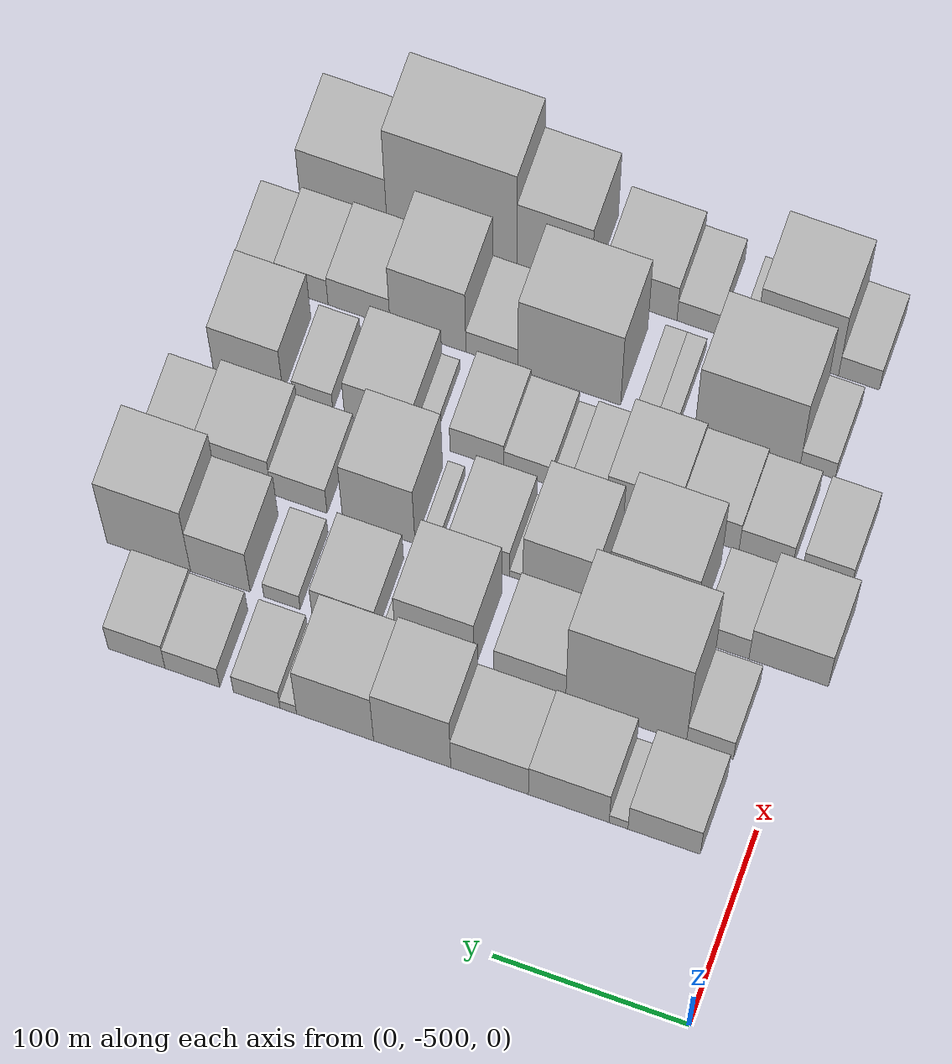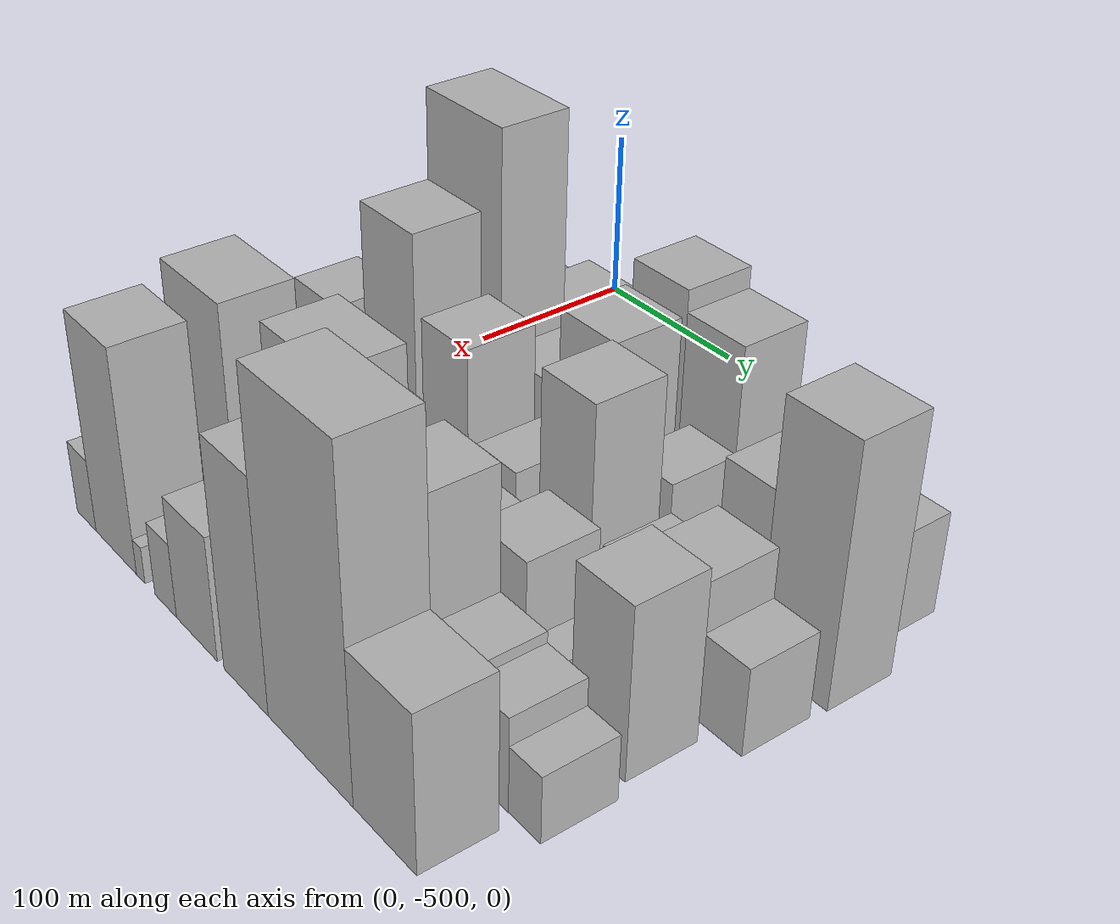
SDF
<sdf version="1.6">
 <world name="default">
  <model name="building_10">
   <static>1</static>
   <pose>100.0000 -459.2454 0 0.000000 0.000000 0.000000</pose>
   <link name="link">
    <pose>0 0 31.50 0 0 0</pose>
    <collision name="collision"><geometry><box><size>40.0000 36.8811 63.0000</size></box></geometry></collision>
    <visual name="visual">
     <cast_shadows>0</cast_shadows>
     <geometry><box><size>40.0000 36.8811 63.0000</size></box></geometry>
     <material>
      <script>
       <uri>model://HANNAS_wall/materials/scripts</uri>
       <uri>model://HANNAS_wall/materials/textures</uri>
       <name>vrc/HANNAS_wall</name>
      </script>
     </material>
    </visual>
   </link>
  </model>
  <model name="building_11">
   <static>1</static>
   <pose>100.0000 -436.0105 0 0.000000 0.000000 0.000000</pose>
   <link name="link">
    <pose>0 0 10.50 0 0 0</pose>
    <collision name="collision"><geometry><box><size>40.0000 9.5886 21.0000</size></box></geometry></collision>
    <visual name="visual">
     <cast_shadows>0</cast_shadows>
     <geometry><box><size>40.0000 9.5886 21.0000</size></box></geometry>
     <material>
      <script>
       <uri>model://HANNAS_wall/materials/scripts</uri>
       <uri>model://HANNAS_wall/materials/textures</uri>
       <name>vrc/HANNAS_wall</name>
      </script>
     </material>
    </visual>
   </link>
  </model>
  <model name="building_12">
   <static>1</static>
   <pose>100.0000 -410.6025 0 0.000000 0.000000 0.000000</pose>
   <link name="link">
    <pose>0 0 37.50 0 0 0</pose>
    <collision name="collision"><geometry><box><size>40.0000 41.2275 75.0000</size></box></geometry></collision>
    <visual name="visual">
     <cast_shadows>0</cast_shadows>
     <geometry><box><size>40.0000 41.2275 75.0000</size></box></geometry>
     <material>
      <script>
       <uri>model://HANNAS_wall/materials/scripts</uri>
       <uri>model://HANNAS_wall/materials/textures</uri>
       <name>vrc/HANNAS_wall</name>
      </script>
     </material>
    </visual>
   </link>
  </model>
  <model name="building_13">
   <static>1</static>
   <pose>100.0000 -370.1580 0 0.000000 0.000000 0.000000</pose>
   <link name="link">
    <pose>0 0 36.00 0 0 0</pose>
    <collision name="collision"><geometry><box><size>40.0000 39.6615 72.0000</size></box></geometry></collision>
    <visual name="visual">
     <cast_shadows>0</cast_shadows>
     <geometry><box><size>40.0000 39.6615 72.0000</size></box></geometry>
     <material>
      <script>
       <uri>model://HANNAS_wall/materials/scripts</uri>
       <uri>model://HANNAS_wall/materials/textures</uri>
       <name>vrc/HANNAS_wall</name>
      </script>
     </material>
    </visual>
   </link>
  </model>
  <model name="building_14">
   <static>1</static>
   <pose>100.0000 -330.5954 0 0.000000 0.000000 0.000000</pose>
   <link name="link">
    <pose>0 0 61.50 0 0 0</pose>
    <collision name="collision"><geometry><box><size>40.0000 39.4638 123.0000</size></box></geometry></collision>
    <visual name="visual">
     <cast_shadows>0</cast_shadows>
     <geometry><box><size>40.0000 39.4638 123.0000</size></box></geometry>
     <material>
      <script>
       <uri>model://HANNAS_wall/materials/scripts</uri>
       <uri>model://HANNAS_wall/materials/textures</uri>
       <name>vrc/HANNAS_wall</name>
      </script>
     </material>
    </visual>
   </link>
  </model>
  <model name="building_15">
   <static>1</static>
   <pose>100.0000 -291.1139 0 0.000000 0.000000 0.000000</pose>
   <link name="link">
    <pose>0 0 55.50 0 0 0</pose>
    <collision name="collision"><geometry><box><size>40.0000 39.4993 111.0000</size></box></geometry></collision>
    <visual name="visual">
     <cast_shadows>0</cast_shadows>
     <geometry><box><size>40.0000 39.4993 111.0000</size></box></geometry>
     <material>
      <script>
       <uri>model://HANNAS_wall/materials/scripts</uri>
       <uri>model://HANNAS_wall/materials/textures</uri>
       <name>vrc/HANNAS_wall</name>
      </script>
     </material>
    </visual>
   </link>
  </model>
  <model name="building_16">
   <static>1</static>
   <pose>100.0000 -267.1278 0 0.000000 0.000000 0.000000</pose>
   <link name="link">
    <pose>0 0 10.50 0 0 0</pose>
    <collision name="collision"><geometry><box><size>40.0000 8.4728 21.0000</size></box></geometry></collision>
    <visual name="visual">
     <cast_shadows>0</cast_shadows>
     <geometry><box><size>40.0000 8.4728 21.0000</size></box></geometry>
     <material>
      <script>
       <uri>model://HANNAS_wall/materials/scripts</uri>
       <uri>model://HANNAS_wall/materials/textures</uri>
       <name>vrc/HANNAS_wall</name>
      </script>
     </material>
    </visual>
   </link>
  </model>
  <model name="building_17">
   <static>1</static>
   <pose>100.0000 -250.9121 0 0.000000 0.000000 0.000000</pose>
   <link name="link">
    <pose>0 0 21.00 0 0 0</pose>
    <collision name="collision"><geometry><box><size>40.0000 23.9586 42.0000</size></box></geometry></collision>
    <visual name="visual">
     <cast_shadows>0</cast_shadows>
     <geometry><box><size>40.0000 23.9586 42.0000</size></box></geometry>
     <material>
      <script>
       <uri>model://HANNAS_wall/materials/scripts</uri>
       <uri>model://HANNAS_wall/materials/textures</uri>
       <name>vrc/HANNAS_wall</name>
      </script>
     </material>
    </visual>
   </link>
  </model>
  <model name="building_18">
   <static>1</static>
   <pose>100.0000 -217.8947 0 0.000000 0.000000 0.000000</pose>
   <link name="link">
    <pose>0 0 24.00 0 0 0</pose>
    <collision name="collision"><geometry><box><size>40.0000 28.0762 48.0000</size></box></geometry></collision>
    <visual name="visual">
     <cast_shadows>0</cast_shadows>
     <geometry><box><size>40.0000 28.0762 48.0000</size></box></geometry>
     <material>
      <script>
       <uri>model://HANNAS_wall/materials/scripts</uri>
       <uri>model://HANNAS_wall/materials/textures</uri>
       <name>vrc/HANNAS_wall</name>
      </script>
     </material>
    </visual>
   </link>
  </model>
  <model name="building_19">
   <static>1</static>
   <pose>100.0000 -189.2541 0 0.000000 0.000000 0.000000</pose>
   <link name="link">
    <pose>0 0 28.50 0 0 0</pose>
    <collision name="collision"><geometry><box><size>40.0000 29.2049 57.0000</size></box></geometry></collision>
    <visual name="visual">
     <cast_shadows>0</cast_shadows>
     <geometry><box><size>40.0000 29.2049 57.0000</size></box></geometry>
     <material>
      <script>
       <uri>model://HANNAS_wall/materials/scripts</uri>
       <uri>model://HANNAS_wall/materials/textures</uri>
       <name>vrc/HANNAS_wall</name>
      </script>
     </material>
    </visual>
   </link>
  </model>
  <model name="building_56">
   <static>1</static>
   <pose>149.0000 -465.5635 0 0.000000 0.000000 0.000000</pose>
   <link name="link">
    <pose>0 0 22.50 0 0 0</pose>
    <collision name="collision"><geometry><box><size>40.0000 23.9850 45.0000</size></box></geometry></collision>
    <visual name="visual">
     <cast_shadows>0</cast_shadows>
     <geometry><box><size>40.0000 23.9850 45.0000</size></box></geometry>
     <material>
      <script>
       <uri>model://HANNAS_wall/materials/scripts</uri>
       <uri>model://HANNAS_wall/materials/textures</uri>
       <name>vrc/HANNAS_wall</name>
      </script>
     </material>
    </visual>
   </link>
  </model>
  <model name="building_57">
   <static>1</static>
   <pose>149.0000 -422.7163 0 0.000000 0.000000 0.000000</pose>
   <link name="link">
    <pose>0 0 94.50 0 0 0</pose>
    <collision name="collision"><geometry><box><size>40.0000 61.7095 189.0000</size></box></geometry></collision>
    <visual name="visual">
     <cast_shadows>0</cast_shadows>
     <geometry><box><size>40.0000 61.7095 189.0000</size></box></geometry>
     <material>
      <script>
       <uri>model://HANNAS_wall/materials/scripts</uri>
       <uri>model://HANNAS_wall/materials/textures</uri>
       <name>vrc/HANNAS_wall</name>
      </script>
     </material>
    </visual>
   </link>
  </model>
  <model name="building_58">
   <static>1</static>
   <pose>149.0000 -373.5208 0 0.000000 0.000000 0.000000</pose>
   <link name="link">
    <pose>0 0 34.50 0 0 0</pose>
    <collision name="collision"><geometry><box><size>40.0000 36.6815 69.0000</size></box></geometry></collision>
    <visual name="visual">
     <cast_shadows>0</cast_shadows>
     <geometry><box><size>40.0000 36.6815 69.0000</size></box></geometry>
     <material>
      <script>
       <uri>model://HANNAS_wall/materials/scripts</uri>
       <uri>model://HANNAS_wall/materials/textures</uri>
       <name>vrc/HANNAS_wall</name>
      </script>
     </material>
    </visual>
   </link>
  </model>
  <model name="building_59">
   <static>1</static>
   <pose>149.0000 -325.0015 0 0.000000 0.000000 0.000000</pose>
   <link name="link">
    <pose>0 0 57.00 0 0 0</pose>
    <collision name="collision"><geometry><box><size>40.0000 40.3569 114.0000</size></box></geometry></collision>
    <visual name="visual">
     <cast_shadows>0</cast_shadows>
     <geometry><box><size>40.0000 40.3569 114.0000</size></box></geometry>
     <material>
      <script>
       <uri>model://HANNAS_wall/materials/scripts</uri>
       <uri>model://HANNAS_wall/materials/textures</uri>
       <name>vrc/HANNAS_wall</name>
      </script>
     </material>
    </visual>
   </link>
  </model>
  <model name="building_60">
   <static>1</static>
   <pose>149.0000 -301.2063 0 0.000000 0.000000 0.000000</pose>
   <link name="link">
    <pose>0 0 9.00 0 0 0</pose>
    <collision name="collision"><geometry><box><size>40.0000 7.2336 18.0000</size></box></geometry></collision>
    <visual name="visual">
     <cast_shadows>0</cast_shadows>
     <geometry><box><size>40.0000 7.2336 18.0000</size></box></geometry>
     <material>
      <script>
       <uri>model://HANNAS_wall/materials/scripts</uri>
       <uri>model://HANNAS_wall/materials/textures</uri>
       <name>vrc/HANNAS_wall</name>
      </script>
     </material>
    </visual>
   </link>
  </model>
  <model name="building_61">
   <static>1</static>
   <pose>149.0000 -278.1447 0 0.000000 0.000000 0.000000</pose>
   <link name="link">
    <pose>0 0 30.00 0 0 0</pose>
    <collision name="collision"><geometry><box><size>40.0000 32.8896 60.0000</size></box></geometry></collision>
    <visual name="visual">
     <cast_shadows>0</cast_shadows>
     <geometry><box><size>40.0000 32.8896 60.0000</size></box></geometry>
     <material>
      <script>
       <uri>model://HANNAS_wall/materials/scripts</uri>
       <uri>model://HANNAS_wall/materials/textures</uri>
       <name>vrc/HANNAS_wall</name>
      </script>
     </material>
    </visual>
   </link>
  </model>
  <model name="building_62">
   <static>1</static>
   <pose>149.0000 -246.3426 0 0.000000 0.000000 0.000000</pose>
   <link name="link">
    <pose>0 0 16.50 0 0 0</pose>
    <collision name="collision"><geometry><box><size>40.0000 18.7146 33.0000</size></box></geometry></collision>
    <visual name="visual">
     <cast_shadows>0</cast_shadows>
     <geometry><box><size>40.0000 18.7146 33.0000</size></box></geometry>
     <material>
      <script>
       <uri>model://HANNAS_wall/materials/scripts</uri>
       <uri>model://HANNAS_wall/materials/textures</uri>
       <name>vrc/HANNAS_wall</name>
      </script>
     </material>
    </visual>
   </link>
  </model>
  <model name="building_63">
   <static>1</static>
   <pose>149.0000 -214.6335 0 0.000000 0.000000 0.000000</pose>
   <link name="link">
    <pose>0 0 46.50 0 0 0</pose>
    <collision name="collision"><geometry><box><size>40.0000 30.7037 93.0000</size></box></geometry></collision>
    <visual name="visual">
     <cast_shadows>0</cast_shadows>
     <geometry><box><size>40.0000 30.7037 93.0000</size></box></geometry>
     <material>
      <script>
       <uri>model://HANNAS_wall/materials/scripts</uri>
       <uri>model://HANNAS_wall/materials/textures</uri>
       <name>vrc/HANNAS_wall</name>
      </script>
     </material>
    </visual>
   </link>
  </model>
  <model name="building_64">
   <static>1</static>
   <pose>149.0000 -177.7519 0 0.000000 0.000000 0.000000</pose>
   <link name="link">
    <pose>0 0 70.50 0 0 0</pose>
    <collision name="collision"><geometry><box><size>40.0000 43.0594 141.0000</size></box></geometry></collision>
    <visual name="visual">
     <cast_shadows>0</cast_shadows>
     <geometry><box><size>40.0000 43.0594 141.0000</size></box></geometry>
     <material>
      <script>
       <uri>model://HANNAS_wall/materials/scripts</uri>
       <uri>model://HANNAS_wall/materials/textures</uri>
       <name>vrc/HANNAS_wall</name>
      </script>
     </material>
    </visual>
   </link>
  </model>
  <model name="building_109">
   <static>1</static>
   <pose>198.0000 -488.9491 0 0.000000 0.000000 0.000000</pose>
   <link name="link">
    <pose>0 0 37.50 0 0 0</pose>
    <collision name="collision"><geometry><box><size>40.0000 40.6350 75.0000</size></box></geometry></collision>
    <visual name="visual">
     <cast_shadows>0</cast_shadows>
     <geometry><box><size>40.0000 40.6350 75.0000</size></box></geometry>
     <material>
      <script>
       <uri>model://HANNAS_wall/materials/scripts</uri>
       <uri>model://HANNAS_wall/materials/textures</uri>
       <name>vrc/HANNAS_wall</name>
      </script>
     </material>
    </visual>
   </link>
  </model>
  <model name="building_110">
   <static>1</static>
   <pose>198.0000 -456.5680 0 0.000000 0.000000 0.000000</pose>
   <link name="link">
    <pose>0 0 24.00 0 0 0</pose>
    <collision name="collision"><geometry><box><size>40.0000 24.1271 48.0000</size></box></geometry></collision>
    <visual name="visual">
     <cast_shadows>0</cast_shadows>
     <geometry><box><size>40.0000 24.1271 48.0000</size></box></geometry>
     <material>
      <script>
       <uri>model://HANNAS_wall/materials/scripts</uri>
       <uri>model://HANNAS_wall/materials/textures</uri>
       <name>vrc/HANNAS_wall</name>
      </script>
     </material>
    </visual>
   </link>
  </model>
  <model name="building_111">
   <static>1</static>
   <pose>198.0000 -418.3187 0 0.000000 0.000000 0.000000</pose>
   <link name="link">
    <pose>0 0 73.50 0 0 0</pose>
    <collision name="collision"><geometry><box><size>40.0000 44.3716 147.0000</size></box></geometry></collision>
    <visual name="visual">
     <cast_shadows>0</cast_shadows>
     <geometry><box><size>40.0000 44.3716 147.0000</size></box></geometry>
     <material>
      <script>
       <uri>model://HANNAS_wall/materials/scripts</uri>
       <uri>model://HANNAS_wall/materials/textures</uri>
       <name>vrc/HANNAS_wall</name>
      </script>
     </material>
    </visual>
   </link>
  </model>
  <model name="building_112">
   <static>1</static>
   <pose>198.0000 -371.4844 0 0.000000 0.000000 0.000000</pose>
   <link name="link">
    <pose>0 0 52.50 0 0 0</pose>
    <collision name="collision"><geometry><box><size>40.0000 37.2971 105.0000</size></box></geometry></collision>
    <visual name="visual">
     <cast_shadows>0</cast_shadows>
     <geometry><box><size>40.0000 37.2971 105.0000</size></box></geometry>
     <material>
      <script>
       <uri>model://HANNAS_wall/materials/scripts</uri>
       <uri>model://HANNAS_wall/materials/textures</uri>
       <name>vrc/HANNAS_wall</name>
      </script>
     </material>
    </visual>
   </link>
  </model>
  <model name="building_113">
   <static>1</static>
   <pose>198.0000 -349.3916 0 0.000000 0.000000 0.000000</pose>
   <link name="link">
    <pose>0 0 7.50 0 0 0</pose>
    <collision name="collision"><geometry><box><size>40.0000 6.8885 15.0000</size></box></geometry></collision>
    <visual name="visual">
     <cast_shadows>0</cast_shadows>
     <geometry><box><size>40.0000 6.8885 15.0000</size></box></geometry>
     <material>
      <script>
       <uri>model://HANNAS_wall/materials/scripts</uri>
       <uri>model://HANNAS_wall/materials/textures</uri>
       <name>vrc/HANNAS_wall</name>
      </script>
     </material>
    </visual>
   </link>
  </model>
  <model name="building_114">
   <static>1</static>
   <pose>198.0000 -330.4597 0 0.000000 0.000000 0.000000</pose>
   <link name="link">
    <pose>0 0 28.50 0 0 0</pose>
    <collision name="collision"><geometry><box><size>40.0000 30.9753 57.0000</size></box></geometry></collision>
    <visual name="visual">
     <cast_shadows>0</cast_shadows>
     <geometry><box><size>40.0000 30.9753 57.0000</size></box></geometry>
     <material>
      <script>
       <uri>model://HANNAS_wall/materials/scripts</uri>
       <uri>model://HANNAS_wall/materials/textures</uri>
       <name>vrc/HANNAS_wall</name>
      </script>
     </material>
    </visual>
   </link>
  </model>
  <model name="building_115">
   <static>1</static>
   <pose>198.0000 -304.6486 0 0.000000 0.000000 0.000000</pose>
   <link name="link">
    <pose>0 0 10.50 0 0 0</pose>
    <collision name="collision"><geometry><box><size>40.0000 8.6469 21.0000</size></box></geometry></collision>
    <visual name="visual">
     <cast_shadows>0</cast_shadows>
     <geometry><box><size>40.0000 8.6469 21.0000</size></box></geometry>
     <material>
      <script>
       <uri>model://HANNAS_wall/materials/scripts</uri>
       <uri>model://HANNAS_wall/materials/textures</uri>
       <name>vrc/HANNAS_wall</name>
      </script>
     </material>
    </visual>
   </link>
  </model>
  <model name="building_116">
   <static>1</static>
   <pose>198.0000 -278.6978 0 0.000000 0.000000 0.000000</pose>
   <link name="link">
    <pose>0 0 61.50 0 0 0</pose>
    <collision name="collision"><geometry><box><size>40.0000 37.2547 123.0000</size></box></geometry></collision>
    <visual name="visual">
     <cast_shadows>0</cast_shadows>
     <geometry><box><size>40.0000 37.2547 123.0000</size></box></geometry>
     <material>
      <script>
       <uri>model://HANNAS_wall/materials/scripts</uri>
       <uri>model://HANNAS_wall/materials/textures</uri>
       <name>vrc/HANNAS_wall</name>
      </script>
     </material>
    </visual>
   </link>
  </model>
  <model name="building_117">
   <static>1</static>
   <pose>198.0000 -237.6094 0 0.000000 0.000000 0.000000</pose>
   <link name="link">
    <pose>0 0 27.00 0 0 0</pose>
    <collision name="collision"><geometry><box><size>40.0000 28.9221 54.0000</size></box></geometry></collision>
    <visual name="visual">
     <cast_shadows>0</cast_shadows>
     <geometry><box><size>40.0000 28.9221 54.0000</size></box></geometry>
     <material>
      <script>
       <uri>model://HANNAS_wall/materials/scripts</uri>
       <uri>model://HANNAS_wall/materials/textures</uri>
       <name>vrc/HANNAS_wall</name>
      </script>
     </material>
    </visual>
   </link>
  </model>
  <model name="building_118">
   <static>1</static>
   <pose>198.0000 -204.3692 0 0.000000 0.000000 0.000000</pose>
   <link name="link">
    <pose>0 0 37.50 0 0 0</pose>
    <collision name="collision"><geometry><box><size>40.0000 37.5582 75.0000</size></box></geometry></collision>
    <visual name="visual">
     <cast_shadows>0</cast_shadows>
     <geometry><box><size>40.0000 37.5582 75.0000</size></box></geometry>
     <material>
      <script>
       <uri>model://HANNAS_wall/materials/scripts</uri>
       <uri>model://HANNAS_wall/materials/textures</uri>
       <name>vrc/HANNAS_wall</name>
      </script>
     </material>
    </visual>
   </link>
  </model>
  <model name="building_119">
   <static>1</static>
   <pose>198.0000 -171.7692 0 0.000000 0.000000 0.000000</pose>
   <link name="link">
    <pose>0 0 24.00 0 0 0</pose>
    <collision name="collision"><geometry><box><size>40.0000 27.6419 48.0000</size></box></geometry></collision>
    <visual name="visual">
     <cast_shadows>0</cast_shadows>
     <geometry><box><size>40.0000 27.6419 48.0000</size></box></geometry>
     <material>
      <script>
       <uri>model://HANNAS_wall/materials/scripts</uri>
       <uri>model://HANNAS_wall/materials/textures</uri>
       <name>vrc/HANNAS_wall</name>
      </script>
     </material>
    </visual>
   </link>
  </model>
  <model name="building_159">
   <static>1</static>
   <pose>247.0000 -491.5877 0 0.000000 0.000000 0.000000</pose>
   <link name="link">
    <pose>0 0 24.00 0 0 0</pose>
    <collision name="collision"><geometry><box><size>40.0000 25.1215 48.0000</size></box></geometry></collision>
    <visual name="visual">
     <cast_shadows>0</cast_shadows>
     <geometry><box><size>40.0000 25.1215 48.0000</size></box></geometry>
     <material>
      <script>
       <uri>model://HANNAS_wall/materials/scripts</uri>
       <uri>model://HANNAS_wall/materials/textures</uri>
       <name>vrc/HANNAS_wall</name>
      </script>
     </material>
    </visual>
   </link>
  </model>
  <model name="building_160">
   <static>1</static>
   <pose>247.0000 -460.3215 0 0.000000 0.000000 0.000000</pose>
   <link name="link">
    <pose>0 0 25.50 0 0 0</pose>
    <collision name="collision"><geometry><box><size>40.0000 27.4108 51.0000</size></box></geometry></collision>
    <visual name="visual">
     <cast_shadows>0</cast_shadows>
     <geometry><box><size>40.0000 27.4108 51.0000</size></box></geometry>
     <material>
      <script>
       <uri>model://HANNAS_wall/materials/scripts</uri>
       <uri>model://HANNAS_wall/materials/textures</uri>
       <name>vrc/HANNAS_wall</name>
      </script>
     </material>
    </visual>
   </link>
  </model>
  <model name="building_161">
   <static>1</static>
   <pose>247.0000 -430.9038 0 0.000000 0.000000 0.000000</pose>
   <link name="link">
    <pose>0 0 30.00 0 0 0</pose>
    <collision name="collision"><geometry><box><size>40.0000 31.4246 60.0000</size></box></geometry></collision>
    <visual name="visual">
     <cast_shadows>0</cast_shadows>
     <geometry><box><size>40.0000 31.4246 60.0000</size></box></geometry>
     <material>
      <script>
       <uri>model://HANNAS_wall/materials/scripts</uri>
       <uri>model://HANNAS_wall/materials/textures</uri>
       <name>vrc/HANNAS_wall</name>
      </script>
     </material>
    </visual>
   </link>
  </model>
  <model name="building_162">
   <static>1</static>
   <pose>247.0000 -396.9194 0 0.000000 0.000000 0.000000</pose>
   <link name="link">
    <pose>0 0 34.50 0 0 0</pose>
    <collision name="collision"><geometry><box><size>40.0000 36.5441 69.0000</size></box></geometry></collision>
    <visual name="visual">
     <cast_shadows>0</cast_shadows>
     <geometry><box><size>40.0000 36.5441 69.0000</size></box></geometry>
     <material>
      <script>
       <uri>model://HANNAS_wall/materials/scripts</uri>
       <uri>model://HANNAS_wall/materials/textures</uri>
       <name>vrc/HANNAS_wall</name>
      </script>
     </material>
    </visual>
   </link>
  </model>
  <model name="building_163">
   <static>1</static>
   <pose>247.0000 -369.4734 0 0.000000 0.000000 0.000000</pose>
   <link name="link">
    <pose>0 0 18.00 0 0 0</pose>
    <collision name="collision"><geometry><box><size>40.0000 18.3479 36.0000</size></box></geometry></collision>
    <visual name="visual">
     <cast_shadows>0</cast_shadows>
     <geometry><box><size>40.0000 18.3479 36.0000</size></box></geometry>
     <material>
      <script>
       <uri>model://HANNAS_wall/materials/scripts</uri>
       <uri>model://HANNAS_wall/materials/textures</uri>
       <name>vrc/HANNAS_wall</name>
      </script>
     </material>
    </visual>
   </link>
  </model>
  <model name="building_164">
   <static>1</static>
   <pose>247.0000 -355.3686 0 0.000000 0.000000 0.000000</pose>
   <link name="link">
    <pose>0 0 10.50 0 0 0</pose>
    <collision name="collision"><geometry><box><size>40.0000 9.8616 21.0000</size></box></geometry></collision>
    <visual name="visual">
     <cast_shadows>0</cast_shadows>
     <geometry><box><size>40.0000 9.8616 21.0000</size></box></geometry>
     <material>
      <script>
       <uri>model://HANNAS_wall/materials/scripts</uri>
       <uri>model://HANNAS_wall/materials/textures</uri>
       <name>vrc/HANNAS_wall</name>
      </script>
     </material>
    </visual>
   </link>
  </model>
  <model name="building_165">
   <static>1</static>
   <pose>247.0000 -338.0878 0 0.000000 0.000000 0.000000</pose>
   <link name="link">
    <pose>0 0 21.00 0 0 0</pose>
    <collision name="collision"><geometry><box><size>40.0000 24.7001 42.0000</size></box></geometry></collision>
    <visual name="visual">
     <cast_shadows>0</cast_shadows>
     <geometry><box><size>40.0000 24.7001 42.0000</size></box></geometry>
     <material>
      <script>
       <uri>model://HANNAS_wall/materials/scripts</uri>
       <uri>model://HANNAS_wall/materials/textures</uri>
       <name>vrc/HANNAS_wall</name>
      </script>
     </material>
    </visual>
   </link>
  </model>
  <model name="building_166">
   <static>1</static>
   <pose>247.0000 -311.8815 0 0.000000 0.000000 0.000000</pose>
   <link name="link">
    <pose>0 0 27.00 0 0 0</pose>
    <collision name="collision"><geometry><box><size>40.0000 27.7124 54.0000</size></box></geometry></collision>
    <visual name="visual">
     <cast_shadows>0</cast_shadows>
     <geometry><box><size>40.0000 27.7124 54.0000</size></box></geometry>
     <material>
      <script>
       <uri>model://HANNAS_wall/materials/scripts</uri>
       <uri>model://HANNAS_wall/materials/textures</uri>
       <name>vrc/HANNAS_wall</name>
      </script>
     </material>
    </visual>
   </link>
  </model>
  <model name="building_167">
   <static>1</static>
   <pose>247.0000 -284.3494 0 0.000000 0.000000 0.000000</pose>
   <link name="link">
    <pose>0 0 10.50 0 0 0</pose>
    <collision name="collision"><geometry><box><size>40.0000 9.3517 21.0000</size></box></geometry></collision>
    <visual name="visual">
     <cast_shadows>0</cast_shadows>
     <geometry><box><size>40.0000 9.3517 21.0000</size></box></geometry>
     <material>
      <script>
       <uri>model://HANNAS_wall/materials/scripts</uri>
       <uri>model://HANNAS_wall/materials/textures</uri>
       <name>vrc/HANNAS_wall</name>
      </script>
     </material>
    </visual>
   </link>
  </model>
  <model name="building_168">
   <static>1</static>
   <pose>247.0000 -261.6082 0 0.000000 0.000000 0.000000</pose>
   <link name="link">
    <pose>0 0 36.00 0 0 0</pose>
    <collision name="collision"><geometry><box><size>40.0000 36.1308 72.0000</size></box></geometry></collision>
    <visual name="visual">
     <cast_shadows>0</cast_shadows>
     <geometry><box><size>40.0000 36.1308 72.0000</size></box></geometry>
     <material>
      <script>
       <uri>model://HANNAS_wall/materials/scripts</uri>
       <uri>model://HANNAS_wall/materials/textures</uri>
       <name>vrc/HANNAS_wall</name>
      </script>
     </material>
    </visual>
   </link>
  </model>
  <model name="building_169">
   <static>1</static>
   <pose>247.0000 -227.1910 0 0.000000 0.000000 0.000000</pose>
   <link name="link">
    <pose>0 0 18.00 0 0 0</pose>
    <collision name="collision"><geometry><box><size>40.0000 20.7035 36.0000</size></box></geometry></collision>
    <visual name="visual">
     <cast_shadows>0</cast_shadows>
     <geometry><box><size>40.0000 20.7035 36.0000</size></box></geometry>
     <material>
      <script>
       <uri>model://HANNAS_wall/materials/scripts</uri>
       <uri>model://HANNAS_wall/materials/textures</uri>
       <name>vrc/HANNAS_wall</name>
      </script>
     </material>
    </visual>
   </link>
  </model>
  <model name="building_170">
   <static>1</static>
   <pose>247.0000 -193.7674 0 0.000000 0.000000 0.000000</pose>
   <link name="link">
    <pose>0 0 46.50 0 0 0</pose>
    <collision name="collision"><geometry><box><size>40.0000 36.1437 93.0000</size></box></geometry></collision>
    <visual name="visual">
     <cast_shadows>0</cast_shadows>
     <geometry><box><size>40.0000 36.1437 93.0000</size></box></geometry>
     <material>
      <script>
       <uri>model://HANNAS_wall/materials/scripts</uri>
       <uri>model://HANNAS_wall/materials/textures</uri>
       <name>vrc/HANNAS_wall</name>
      </script>
     </material>
    </visual>
   </link>
  </model>
  <model name="building_209">
   <static>1</static>
   <pose>296.0000 -470.1647 0 0.000000 0.000000 0.000000</pose>
   <link name="link">
    <pose>0 0 18.00 0 0 0</pose>
    <collision name="collision"><geometry><box><size>40.0000 18.1504 36.0000</size></box></geometry></collision>
    <visual name="visual">
     <cast_shadows>0</cast_shadows>
     <geometry><box><size>40.0000 18.1504 36.0000</size></box></geometry>
     <material>
      <script>
       <uri>model://HANNAS_wall/materials/scripts</uri>
       <uri>model://HANNAS_wall/materials/textures</uri>
       <name>vrc/HANNAS_wall</name>
      </script>
     </material>
    </visual>
   </link>
  </model>
  <model name="building_210">
   <static>1</static>
   <pose>296.0000 -433.9888 0 0.000000 0.000000 0.000000</pose>
   <link name="link">
    <pose>0 0 69.00 0 0 0</pose>
    <collision name="collision"><geometry><box><size>40.0000 54.2012 138.0000</size></box></geometry></collision>
    <visual name="visual">
     <cast_shadows>0</cast_shadows>
     <geometry><box><size>40.0000 54.2012 138.0000</size></box></geometry>
     <material>
      <script>
       <uri>model://HANNAS_wall/materials/scripts</uri>
       <uri>model://HANNAS_wall/materials/textures</uri>
       <name>vrc/HANNAS_wall</name>
      </script>
     </material>
    </visual>
   </link>
  </model>
  <model name="building_211">
   <static>1</static>
   <pose>296.0000 -393.8415 0 0.000000 0.000000 0.000000</pose>
   <link name="link">
    <pose>0 0 12.00 0 0 0</pose>
    <collision name="collision"><geometry><box><size>40.0000 10.0933 24.0000</size></box></geometry></collision>
    <visual name="visual">
     <cast_shadows>0</cast_shadows>
     <geometry><box><size>40.0000 10.0933 24.0000</size></box></geometry>
     <material>
      <script>
       <uri>model://HANNAS_wall/materials/scripts</uri>
       <uri>model://HANNAS_wall/materials/textures</uri>
       <name>vrc/HANNAS_wall</name>
      </script>
     </material>
    </visual>
   </link>
  </model>
  <model name="building_212">
   <static>1</static>
   <pose>296.0000 -383.2617 0 0.000000 0.000000 0.000000</pose>
   <link name="link">
    <pose>0 0 12.00 0 0 0</pose>
    <collision name="collision"><geometry><box><size>40.0000 11.0664 24.0000</size></box></geometry></collision>
    <visual name="visual">
     <cast_shadows>0</cast_shadows>
     <geometry><box><size>40.0000 11.0664 24.0000</size></box></geometry>
     <material>
      <script>
       <uri>model://HANNAS_wall/materials/scripts</uri>
       <uri>model://HANNAS_wall/materials/textures</uri>
       <name>vrc/HANNAS_wall</name>
      </script>
     </material>
    </visual>
   </link>
  </model>
  <model name="building_213">
   <static>1</static>
   <pose>296.0000 -342.2511 0 0.000000 0.000000 0.000000</pose>
   <link name="link">
    <pose>0 0 73.50 0 0 0</pose>
    <collision name="collision"><geometry><box><size>40.0000 52.9548 147.0000</size></box></geometry></collision>
    <visual name="visual">
     <cast_shadows>0</cast_shadows>
     <geometry><box><size>40.0000 52.9548 147.0000</size></box></geometry>
     <material>
      <script>
       <uri>model://HANNAS_wall/materials/scripts</uri>
       <uri>model://HANNAS_wall/materials/textures</uri>
       <name>vrc/HANNAS_wall</name>
      </script>
     </material>
    </visual>
   </link>
  </model>
  <model name="building_214">
   <static>1</static>
   <pose>296.0000 -302.3455 0 0.000000 0.000000 0.000000</pose>
   <link name="link">
    <pose>0 0 22.50 0 0 0</pose>
    <collision name="collision"><geometry><box><size>40.0000 26.8563 45.0000</size></box></geometry></collision>
    <visual name="visual">
     <cast_shadows>0</cast_shadows>
     <geometry><box><size>40.0000 26.8563 45.0000</size></box></geometry>
     <material>
      <script>
       <uri>model://HANNAS_wall/materials/scripts</uri>
       <uri>model://HANNAS_wall/materials/textures</uri>
       <name>vrc/HANNAS_wall</name>
      </script>
     </material>
    </visual>
   </link>
  </model>
  <model name="building_215">
   <static>1</static>
   <pose>296.0000 -269.3140 0 0.000000 0.000000 0.000000</pose>
   <link name="link">
    <pose>0 0 61.50 0 0 0</pose>
    <collision name="collision"><geometry><box><size>40.0000 39.2067 123.0000</size></box></geometry></collision>
    <visual name="visual">
     <cast_shadows>0</cast_shadows>
     <geometry><box><size>40.0000 39.2067 123.0000</size></box></geometry>
     <material>
      <script>
       <uri>model://HANNAS_wall/materials/scripts</uri>
       <uri>model://HANNAS_wall/materials/textures</uri>
       <name>vrc/HANNAS_wall</name>
      </script>
     </material>
    </visual>
   </link>
  </model>
  <model name="building_216">
   <static>1</static>
   <pose>296.0000 -233.6387 0 0.000000 0.000000 0.000000</pose>
   <link name="link">
    <pose>0 0 28.50 0 0 0</pose>
    <collision name="collision"><geometry><box><size>40.0000 32.1440 57.0000</size></box></geometry></collision>
    <visual name="visual">
     <cast_shadows>0</cast_shadows>
     <geometry><box><size>40.0000 32.1440 57.0000</size></box></geometry>
     <material>
      <script>
       <uri>model://HANNAS_wall/materials/scripts</uri>
       <uri>model://HANNAS_wall/materials/textures</uri>
       <name>vrc/HANNAS_wall</name>
      </script>
     </material>
    </visual>
   </link>
  </model>
  <model name="building_217">
   <static>1</static>
   <pose>296.0000 -204.2049 0 0.000000 0.000000 0.000000</pose>
   <link name="link">
    <pose>0 0 25.50 0 0 0</pose>
    <collision name="collision"><geometry><box><size>40.0000 26.7236 51.0000</size></box></geometry></collision>
    <visual name="visual">
     <cast_shadows>0</cast_shadows>
     <geometry><box><size>40.0000 26.7236 51.0000</size></box></geometry>
     <material>
      <script>
       <uri>model://HANNAS_wall/materials/scripts</uri>
       <uri>model://HANNAS_wall/materials/textures</uri>
       <name>vrc/HANNAS_wall</name>
      </script>
     </material>
    </visual>
   </link>
  </model>
  <model name="building_218">
   <static>1</static>
   <pose>296.0000 -180.2125 0 0.000000 0.000000 0.000000</pose>
   <link name="link">
    <pose>0 0 18.00 0 0 0</pose>
    <collision name="collision"><geometry><box><size>40.0000 21.2611 36.0000</size></box></geometry></collision>
    <visual name="visual">
     <cast_shadows>0</cast_shadows>
     <geometry><box><size>40.0000 21.2611 36.0000</size></box></geometry>
     <material>
      <script>
       <uri>model://HANNAS_wall/materials/scripts</uri>
       <uri>model://HANNAS_wall/materials/textures</uri>
       <name>vrc/HANNAS_wall</name>
      </script>
     </material>
    </visual>
   </link>
  </model>
  <model name="building_260">
   <static>1</static>
   <pose>345.0000 -474.6137 0 0.000000 0.000000 0.000000</pose>
   <link name="link">
    <pose>0 0 21.00 0 0 0</pose>
    <collision name="collision"><geometry><box><size>40.0000 21.0812 42.0000</size></box></geometry></collision>
    <visual name="visual">
     <cast_shadows>0</cast_shadows>
     <geometry><box><size>40.0000 21.0812 42.0000</size></box></geometry>
     <material>
      <script>
       <uri>model://HANNAS_wall/materials/scripts</uri>
       <uri>model://HANNAS_wall/materials/textures</uri>
       <name>vrc/HANNAS_wall</name>
      </script>
     </material>
    </visual>
   </link>
  </model>
  <model name="building_261">
   <static>1</static>
   <pose>345.0000 -442.4397 0 0.000000 0.000000 0.000000</pose>
   <link name="link">
    <pose>0 0 63.00 0 0 0</pose>
    <collision name="collision"><geometry><box><size>40.0000 43.2668 126.0000</size></box></geometry></collision>
    <visual name="visual">
     <cast_shadows>0</cast_shadows>
     <geometry><box><size>40.0000 43.2668 126.0000</size></box></geometry>
     <material>
      <script>
       <uri>model://HANNAS_wall/materials/scripts</uri>
       <uri>model://HANNAS_wall/materials/textures</uri>
       <name>vrc/HANNAS_wall</name>
      </script>
     </material>
    </visual>
   </link>
  </model>
  <model name="building_262">
   <static>1</static>
   <pose>345.0000 -416.4743 0 0.000000 0.000000 0.000000</pose>
   <link name="link">
    <pose>0 0 10.50 0 0 0</pose>
    <collision name="collision"><geometry><box><size>40.0000 8.6638 21.0000</size></box></geometry></collision>
    <visual name="visual">
     <cast_shadows>0</cast_shadows>
     <geometry><box><size>40.0000 8.6638 21.0000</size></box></geometry>
     <material>
      <script>
       <uri>model://HANNAS_wall/materials/scripts</uri>
       <uri>model://HANNAS_wall/materials/textures</uri>
       <name>vrc/HANNAS_wall</name>
      </script>
     </material>
    </visual>
   </link>
  </model>
  <model name="building_263">
   <static>1</static>
   <pose>345.0000 -391.4579 0 0.000000 0.000000 0.000000</pose>
   <link name="link">
    <pose>0 0 21.00 0 0 0</pose>
    <collision name="collision"><geometry><box><size>40.0000 21.3689 42.0000</size></box></geometry></collision>
    <visual name="visual">
     <cast_shadows>0</cast_shadows>
     <geometry><box><size>40.0000 21.3689 42.0000</size></box></geometry>
     <material>
      <script>
       <uri>model://HANNAS_wall/materials/scripts</uri>
       <uri>model://HANNAS_wall/materials/textures</uri>
       <name>vrc/HANNAS_wall</name>
      </script>
     </material>
    </visual>
   </link>
  </model>
  <model name="building_264">
   <static>1</static>
   <pose>345.0000 -361.6529 0 0.000000 0.000000 0.000000</pose>
   <link name="link">
    <pose>0 0 34.50 0 0 0</pose>
    <collision name="collision"><geometry><box><size>40.0000 38.2411 69.0000</size></box></geometry></collision>
    <visual name="visual">
     <cast_shadows>0</cast_shadows>
     <geometry><box><size>40.0000 38.2411 69.0000</size></box></geometry>
     <material>
      <script>
       <uri>model://HANNAS_wall/materials/scripts</uri>
       <uri>model://HANNAS_wall/materials/textures</uri>
       <name>vrc/HANNAS_wall</name>
      </script>
     </material>
    </visual>
   </link>
  </model>
  <model name="building_265">
   <static>1</static>
   <pose>345.0000 -317.2759 0 0.000000 0.000000 0.000000</pose>
   <link name="link">
    <pose>0 0 63.00 0 0 0</pose>
    <collision name="collision"><geometry><box><size>40.0000 38.5129 126.0000</size></box></geometry></collision>
    <visual name="visual">
     <cast_shadows>0</cast_shadows>
     <geometry><box><size>40.0000 38.5129 126.0000</size></box></geometry>
     <material>
      <script>
       <uri>model://HANNAS_wall/materials/scripts</uri>
       <uri>model://HANNAS_wall/materials/textures</uri>
       <name>vrc/HANNAS_wall</name>
      </script>
     </material>
    </visual>
   </link>
  </model>
  <model name="building_266">
   <static>1</static>
   <pose>345.0000 -264.3069 0 0.000000 0.000000 0.000000</pose>
   <link name="link">
    <pose>0 0 90.00 0 0 0</pose>
    <collision name="collision"><geometry><box><size>40.0000 67.4253 180.0000</size></box></geometry></collision>
    <visual name="visual">
     <cast_shadows>0</cast_shadows>
     <geometry><box><size>40.0000 67.4253 180.0000</size></box></geometry>
     <material>
      <script>
       <uri>model://HANNAS_wall/materials/scripts</uri>
       <uri>model://HANNAS_wall/materials/textures</uri>
       <name>vrc/HANNAS_wall</name>
      </script>
     </material>
    </visual>
   </link>
  </model>
  <model name="building_267">
   <static>1</static>
   <pose>345.0000 -207.9016 0 0.000000 0.000000 0.000000</pose>
   <link name="link">
    <pose>0 0 42.00 0 0 0</pose>
    <collision name="collision"><geometry><box><size>40.0000 45.3852 84.0000</size></box></geometry></collision>
    <visual name="visual">
     <cast_shadows>0</cast_shadows>
     <geometry><box><size>40.0000 45.3852 84.0000</size></box></geometry>
     <material>
      <script>
       <uri>model://HANNAS_wall/materials/scripts</uri>
       <uri>model://HANNAS_wall/materials/textures</uri>
       <name>vrc/HANNAS_wall</name>
      </script>
     </material>
    </visual>
   </link>
  </model>
 </world>
</sdf>
